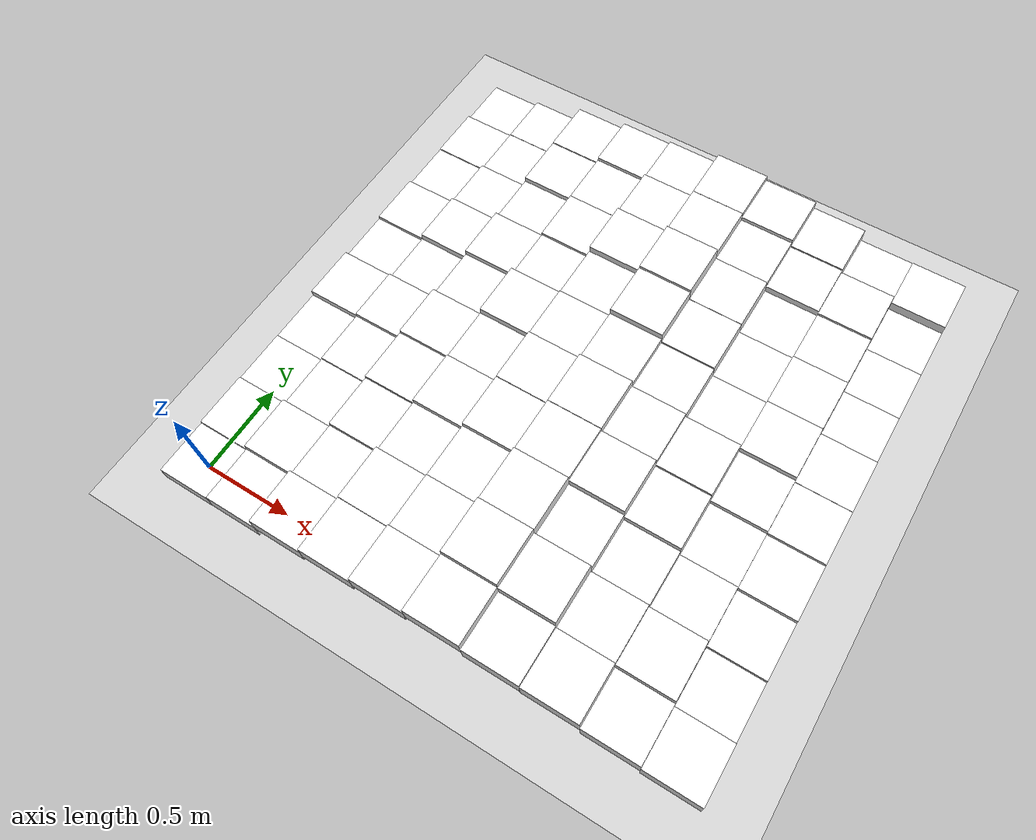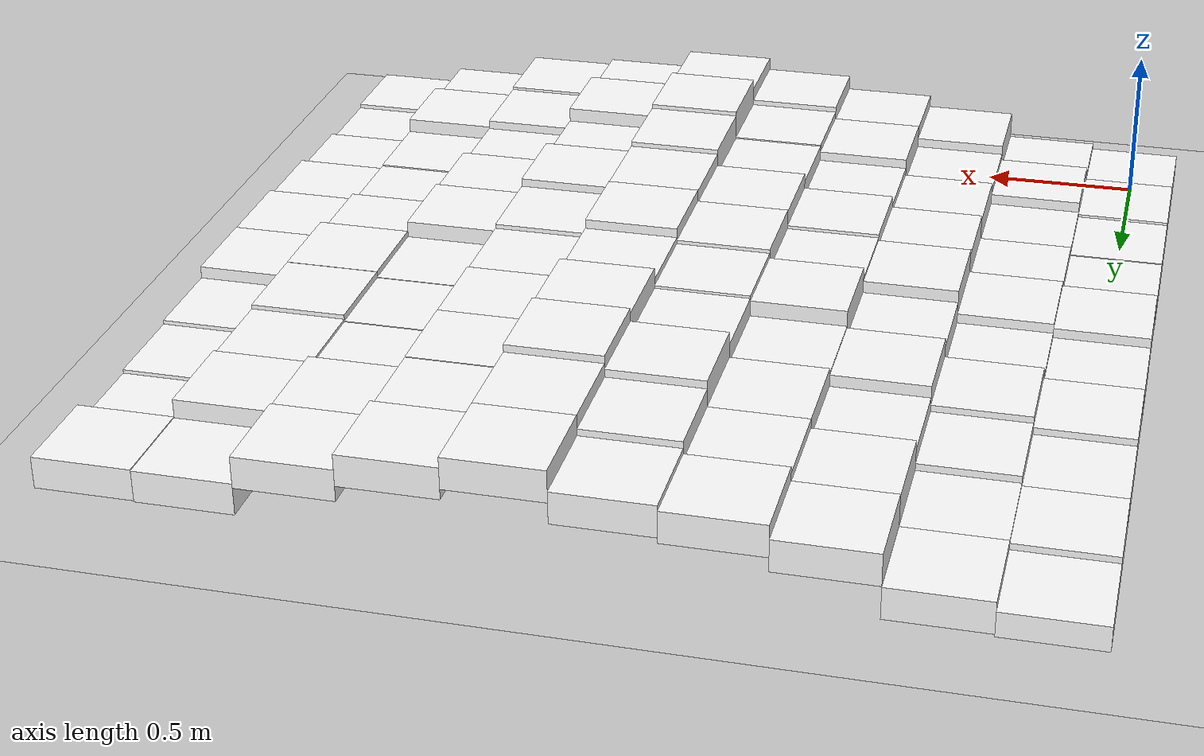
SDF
<sdf version="1.7">
 <world name="default">
  <include><uri>model://sun</uri></include>
  <include><uri>model://ground_plane</uri></include>
  <model name="static_environment">
   <static>true</static>
   <link name="region_0">
    <pose>0.0 0.0 0.03269961766065028 0.0 0.0 0.0</pose>
    <collision name="region_0_collision">
     <geometry><box><size>0.3 0.3 0.1</size></box></geometry>
     <surface><friction><ode><mu>1.0</mu><mu2>1.0</mu2></ode></friction></surface>
    </collision>
    <visual name="region_0_visual">
     <geometry><box><size>0.3 0.3 0.1</size></box></geometry>
     <material><ambient>1.0 1.0 1.0 1.0</ambient><diffuse>1.0 1.0 1.0 1.0</diffuse></material>
    </visual>
   </link>
   <link name="region_1">
    <pose>0.3 0.0 0.05194446738709185 0.0 0.0 0.0</pose>
    <collision name="region_1_collision">
     <geometry><box><size>0.3 0.3 0.1</size></box></geometry>
     <surface><friction><ode><mu>1.0</mu><mu2>1.0</mu2></ode></friction></surface>
    </collision>
    <visual name="region_1_visual">
     <geometry><box><size>0.3 0.3 0.1</size></box></geometry>
     <material><ambient>1.0 1.0 1.0 1.0</ambient><diffuse>1.0 1.0 1.0 1.0</diffuse></material>
    </visual>
   </link>
   <link name="region_2">
    <pose>0.6 0.0 0.1412246858409032 0.0 0.0 0.0</pose>
    <collision name="region_2_collision">
     <geometry><box><size>0.3 0.3 0.1</size></box></geometry>
     <surface><friction><ode><mu>1.0</mu><mu2>1.0</mu2></ode></friction></surface>
    </collision>
    <visual name="region_2_visual">
     <geometry><box><size>0.3 0.3 0.1</size></box></geometry>
     <material><ambient>1.0 1.0 1.0 1.0</ambient><diffuse>1.0 1.0 1.0 1.0</diffuse></material>
    </visual>
   </link>
   <link name="region_3">
    <pose>0.8999999999999999 0.0 0.1826491794463708 0.0 0.0 0.0</pose>
    <collision name="region_3_collision">
     <geometry><box><size>0.3 0.3 0.1</size></box></geometry>
     <surface><friction><ode><mu>1.0</mu><mu2>1.0</mu2></ode></friction></surface>
    </collision>
    <visual name="region_3_visual">
     <geometry><box><size>0.3 0.3 0.1</size></box></geometry>
     <material><ambient>1.0 1.0 1.0 1.0</ambient><diffuse>1.0 1.0 1.0 1.0</diffuse></material>
    </visual>
   </link>
   <link name="region_4">
    <pose>1.2 0.0 0.2315275851565617 0.0 0.0 0.0</pose>
    <collision name="region_4_collision">
     <geometry><box><size>0.3 0.3 0.1</size></box></geometry>
     <surface><friction><ode><mu>1.0</mu><mu2>1.0</mu2></ode></friction></surface>
    </collision>
    <visual name="region_4_visual">
     <geometry><box><size>0.3 0.3 0.1</size></box></geometry>
     <material><ambient>1.0 1.0 1.0 1.0</ambient><diffuse>1.0 1.0 1.0 1.0</diffuse></material>
    </visual>
   </link>
   <link name="region_5">
    <pose>1.5 0.0 0.27477511157529055 0.0 0.0 0.0</pose>
    <collision name="region_5_collision">
     <geometry><box><size>0.3 0.3 0.1</size></box></geometry>
     <surface><friction><ode><mu>1.0</mu><mu2>1.0</mu2></ode></friction></surface>
    </collision>
    <visual name="region_5_visual">
     <geometry><box><size>0.3 0.3 0.1</size></box></geometry>
     <material><ambient>1.0 1.0 1.0 1.0</ambient><diffuse>1.0 1.0 1.0 1.0</diffuse></material>
    </visual>
   </link>
   <link name="region_6">
    <pose>1.8 0.0 0.2153486475528382 0.0 0.0 0.0</pose>
    <collision name="region_6_collision">
     <geometry><box><size>0.3 0.3 0.1</size></box></geometry>
     <surface><friction><ode><mu>1.0</mu><mu2>1.0</mu2></ode></friction></surface>
    </collision>
    <visual name="region_6_visual">
     <geometry><box><size>0.3 0.3 0.1</size></box></geometry>
     <material><ambient>1.0 1.0 1.0 1.0</ambient><diffuse>1.0 1.0 1.0 1.0</diffuse></material>
    </visual>
   </link>
   <link name="region_7">
    <pose>2.1 0.0 0.1964453224762998 0.0 0.0 0.0</pose>
    <collision name="region_7_collision">
     <geometry><box><size>0.3 0.3 0.1</size></box></geometry>
     <surface><friction><ode><mu>1.0</mu><mu2>1.0</mu2></ode></friction></surface>
    </collision>
    <visual name="region_7_visual">
     <geometry><box><size>0.3 0.3 0.1</size></box></geometry>
     <material><ambient>1.0 1.0 1.0 1.0</ambient><diffuse>1.0 1.0 1.0 1.0</diffuse></material>
    </visual>
   </link>
   <link name="region_8">
    <pose>2.4 0.0 0.12247410052558926 0.0 0.0 0.0</pose>
    <collision name="region_8_collision">
     <geometry><box><size>0.3 0.3 0.1</size></box></geometry>
     <surface><friction><ode><mu>1.0</mu><mu2>1.0</mu2></ode></friction></surface>
    </collision>
    <visual name="region_8_visual">
     <geometry><box><size>0.3 0.3 0.1</size></box></geometry>
     <material><ambient>1.0 1.0 1.0 1.0</ambient><diffuse>1.0 1.0 1.0 1.0</diffuse></material>
    </visual>
   </link>
   <link name="region_9">
    <pose>2.6999999999999997 0.0 0.07001204563271501 0.0 0.0 0.0</pose>
    <collision name="region_9_collision">
     <geometry><box><size>0.3 0.3 0.1</size></box></geometry>
     <surface><friction><ode><mu>1.0</mu><mu2>1.0</mu2></ode></friction></surface>
    </collision>
    <visual name="region_9_visual">
     <geometry><box><size>0.3 0.3 0.1</size></box></geometry>
     <material><ambient>1.0 1.0 1.0 1.0</ambient><diffuse>1.0 1.0 1.0 1.0</diffuse></material>
    </visual>
   </link>
   <link name="region_10">
    <pose>0.0 0.3 0.04658503745769712 0.0 0.0 0.0</pose>
    <collision name="region_10_collision">
     <geometry><box><size>0.3 0.3 0.1</size></box></geometry>
     <surface><friction><ode><mu>1.0</mu><mu2>1.0</mu2></ode></friction></surface>
    </collision>
    <visual name="region_10_visual">
     <geometry><box><size>0.3 0.3 0.1</size></box></geometry>
     <material><ambient>1.0 1.0 1.0 1.0</ambient><diffuse>1.0 1.0 1.0 1.0</diffuse></material>
    </visual>
   </link>
   <link name="region_11">
    <pose>0.3 0.3 0.08968565707077794 0.0 0.0 0.0</pose>
    <collision name="region_11_collision">
     <geometry><box><size>0.3 0.3 0.1</size></box></geometry>
     <surface><friction><ode><mu>1.0</mu><mu2>1.0</mu2></ode></friction></surface>
    </collision>
    <visual name="region_11_visual">
     <geometry><box><size>0.3 0.3 0.1</size></box></geometry>
     <material><ambient>1.0 1.0 1.0 1.0</ambient><diffuse>1.0 1.0 1.0 1.0</diffuse></material>
    </visual>
   </link>
   <link name="region_12">
    <pose>0.6 0.3 0.11009349590087002 0.0 0.0 0.0</pose>
    <collision name="region_12_collision">
     <geometry><box><size>0.3 0.3 0.1</size></box></geometry>
     <surface><friction><ode><mu>1.0</mu><mu2>1.0</mu2></ode></friction></surface>
    </collision>
    <visual name="region_12_visual">
     <geometry><box><size>0.3 0.3 0.1</size></box></geometry>
     <material><ambient>1.0 1.0 1.0 1.0</ambient><diffuse>1.0 1.0 1.0 1.0</diffuse></material>
    </visual>
   </link>
   <link name="region_13">
    <pose>0.8999999999999999 0.3 0.188518359094931 0.0 0.0 0.0</pose>
    <collision name="region_13_collision">
     <geometry><box><size>0.3 0.3 0.1</size></box></geometry>
     <surface><friction><ode><mu>1.0</mu><mu2>1.0</mu2></ode></friction></surface>
    </collision>
    <visual name="region_13_visual">
     <geometry><box><size>0.3 0.3 0.1</size></box></geometry>
     <material><ambient>1.0 1.0 1.0 1.0</ambient><diffuse>1.0 1.0 1.0 1.0</diffuse></material>
    </visual>
   </link>
   <link name="region_14">
    <pose>1.2 0.3 0.21383298992351865 0.0 0.0 0.0</pose>
    <collision name="region_14_collision">
     <geometry><box><size>0.3 0.3 0.1</size></box></geometry>
     <surface><friction><ode><mu>1.0</mu><mu2>1.0</mu2></ode></friction></surface>
    </collision>
    <visual name="region_14_visual">
     <geometry><box><size>0.3 0.3 0.1</size></box></geometry>
     <material><ambient>1.0 1.0 1.0 1.0</ambient><diffuse>1.0 1.0 1.0 1.0</diffuse></material>
    </visual>
   </link>
   <link name="region_15">
    <pose>1.5 0.3 0.3089001360862505 0.0 0.0 0.0</pose>
    <collision name="region_15_collision">
     <geometry><box><size>0.3 0.3 0.1</size></box></geometry>
     <surface><friction><ode><mu>1.0</mu><mu2>1.0</mu2></ode></friction></surface>
    </collision>
    <visual name="region_15_visual">
     <geometry><box><size>0.3 0.3 0.1</size></box></geometry>
     <material><ambient>1.0 1.0 1.0 1.0</ambient><diffuse>1.0 1.0 1.0 1.0</diffuse></material>
    </visual>
   </link>
   <link name="region_16">
    <pose>1.8 0.3 0.26404814694796164 0.0 0.0 0.0</pose>
    <collision name="region_16_collision">
     <geometry><box><size>0.3 0.3 0.1</size></box></geometry>
     <surface><friction><ode><mu>1.0</mu><mu2>1.0</mu2></ode></friction></surface>
    </collision>
    <visual name="region_16_visual">
     <geometry><box><size>0.3 0.3 0.1</size></box></geometry>
     <material><ambient>1.0 1.0 1.0 1.0</ambient><diffuse>1.0 1.0 1.0 1.0</diffuse></material>
    </visual>
   </link>
   <link name="region_17">
    <pose>2.1 0.3 0.18706776280364462 0.0 0.0 0.0</pose>
    <collision name="region_17_collision">
     <geometry><box><size>0.3 0.3 0.1</size></box></geometry>
     <surface><friction><ode><mu>1.0</mu><mu2>1.0</mu2></ode></friction></surface>
    </collision>
    <visual name="region_17_visual">
     <geometry><box><size>0.3 0.3 0.1</size></box></geometry>
     <material><ambient>1.0 1.0 1.0 1.0</ambient><diffuse>1.0 1.0 1.0 1.0</diffuse></material>
    </visual>
   </link>
   <link name="region_18">
    <pose>2.4 0.3 0.16349211140181014 0.0 0.0 0.0</pose>
    <collision name="region_18_collision">
     <geometry><box><size>0.3 0.3 0.1</size></box></geometry>
     <surface><friction><ode><mu>1.0</mu><mu2>1.0</mu2></ode></friction></surface>
    </collision>
    <visual name="region_18_visual">
     <geometry><box><size>0.3 0.3 0.1</size></box></geometry>
     <material><ambient>1.0 1.0 1.0 1.0</ambient><diffuse>1.0 1.0 1.0 1.0</diffuse></material>
    </visual>
   </link>
   <link name="region_19">
    <pose>2.6999999999999997 0.3 0.05597341077567959 0.0 0.0 0.0</pose>
    <collision name="region_19_collision">
     <geometry><box><size>0.3 0.3 0.1</size></box></geometry>
     <surface><friction><ode><mu>1.0</mu><mu2>1.0</mu2></ode></friction></surface>
    </collision>
    <visual name="region_19_visual">
     <geometry><box><size>0.3 0.3 0.1</size></box></geometry>
     <material><ambient>1.0 1.0 1.0 1.0</ambient><diffuse>1.0 1.0 1.0 1.0</diffuse></material>
    </visual>
   </link>
   <link name="region_20">
    <pose>0.0 0.6 0.037893456759127794 0.0 0.0 0.0</pose>
    <collision name="region_20_collision">
     <geometry><box><size>0.3 0.3 0.1</size></box></geometry>
     <surface><friction><ode><mu>1.0</mu><mu2>1.0</mu2></ode></friction></surface>
    </collision>
    <visual name="region_20_visual">
     <geometry><box><size>0.3 0.3 0.1</size></box></geometry>
     <material><ambient>1.0 1.0 1.0 1.0</ambient><diffuse>1.0 1.0 1.0 1.0</diffuse></material>
    </visual>
   </link>
   <link name="region_21">
    <pose>0.3 0.6 0.054896487829015864 0.0 0.0 0.0</pose>
    <collision name="region_21_collision">
     <geometry><box><size>0.3 0.3 0.1</size></box></geometry>
     <surface><friction><ode><mu>1.0</mu><mu2>1.0</mu2></ode></friction></surface>
    </collision>
    <visual name="region_21_visual">
     <geometry><box><size>0.3 0.3 0.1</size></box></geometry>
     <material><ambient>1.0 1.0 1.0 1.0</ambient><diffuse>1.0 1.0 1.0 1.0</diffuse></material>
    </visual>
   </link>
   <link name="region_22">
    <pose>0.6 0.6 0.1321091745698042 0.0 0.0 0.0</pose>
    <collision name="region_22_collision">
     <geometry><box><size>0.3 0.3 0.1</size></box></geometry>
     <surface><friction><ode><mu>1.0</mu><mu2>1.0</mu2></ode></friction></surface>
    </collision>
    <visual name="region_22_visual">
     <geometry><box><size>0.3 0.3 0.1</size></box></geometry>
     <material><ambient>1.0 1.0 1.0 1.0</ambient><diffuse>1.0 1.0 1.0 1.0</diffuse></material>
    </visual>
   </link>
   <link name="region_23">
    <pose>0.8999999999999999 0.6 0.15723981867454595 0.0 0.0 0.0</pose>
    <collision name="region_23_collision">
     <geometry><box><size>0.3 0.3 0.1</size></box></geometry>
     <surface><friction><ode><mu>1.0</mu><mu2>1.0</mu2></ode></friction></surface>
    </collision>
    <visual name="region_23_visual">
     <geometry><box><size>0.3 0.3 0.1</size></box></geometry>
     <material><ambient>1.0 1.0 1.0 1.0</ambient><diffuse>1.0 1.0 1.0 1.0</diffuse></material>
    </visual>
   </link>
   <link name="region_24">
    <pose>1.2 0.6 0.20953699787759583 0.0 0.0 0.0</pose>
    <collision name="region_24_collision">
     <geometry><box><size>0.3 0.3 0.1</size></box></geometry>
     <surface><friction><ode><mu>1.0</mu><mu2>1.0</mu2></ode></friction></surface>
    </collision>
    <visual name="region_24_visual">
     <geometry><box><size>0.3 0.3 0.1</size></box></geometry>
     <material><ambient>1.0 1.0 1.0 1.0</ambient><diffuse>1.0 1.0 1.0 1.0</diffuse></material>
    </visual>
   </link>
   <link name="region_25">
    <pose>1.5 0.6 0.2947558981733947 0.0 0.0 0.0</pose>
    <collision name="region_25_collision">
     <geometry><box><size>0.3 0.3 0.1</size></box></geometry>
     <surface><friction><ode><mu>1.0</mu><mu2>1.0</mu2></ode></friction></surface>
    </collision>
    <visual name="region_25_visual">
     <geometry><box><size>0.3 0.3 0.1</size></box></geometry>
     <material><ambient>1.0 1.0 1.0 1.0</ambient><diffuse>1.0 1.0 1.0 1.0</diffuse></material>
    </visual>
   </link>
   <link name="region_26">
    <pose>1.8 0.6 0.2169509000453177 0.0 0.0 0.0</pose>
    <collision name="region_26_collision">
     <geometry><box><size>0.3 0.3 0.1</size></box></geometry>
     <surface><friction><ode><mu>1.0</mu><mu2>1.0</mu2></ode></friction></surface>
    </collision>
    <visual name="region_26_visual">
     <geometry><box><size>0.3 0.3 0.1</size></box></geometry>
     <material><ambient>1.0 1.0 1.0 1.0</ambient><diffuse>1.0 1.0 1.0 1.0</diffuse></material>
    </visual>
   </link>
   <link name="region_27">
    <pose>2.1 0.6 0.15802092632324874 0.0 0.0 0.0</pose>
    <collision name="region_27_collision">
     <geometry><box><size>0.3 0.3 0.1</size></box></geometry>
     <surface><friction><ode><mu>1.0</mu><mu2>1.0</mu2></ode></friction></surface>
    </collision>
    <visual name="region_27_visual">
     <geometry><box><size>0.3 0.3 0.1</size></box></geometry>
     <material><ambient>1.0 1.0 1.0 1.0</ambient><diffuse>1.0 1.0 1.0 1.0</diffuse></material>
    </visual>
   </link>
   <link name="region_28">
    <pose>2.4 0.6 0.116522965530292 0.0 0.0 0.0</pose>
    <collision name="region_28_collision">
     <geometry><box><size>0.3 0.3 0.1</size></box></geometry>
     <surface><friction><ode><mu>1.0</mu><mu2>1.0</mu2></ode></friction></surface>
    </collision>
    <visual name="region_28_visual">
     <geometry><box><size>0.3 0.3 0.1</size></box></geometry>
     <material><ambient>1.0 1.0 1.0 1.0</ambient><diffuse>1.0 1.0 1.0 1.0</diffuse></material>
    </visual>
   </link>
   <link name="region_29">
    <pose>2.6999999999999997 0.6 0.07623697137524746 0.0 0.0 0.0</pose>
    <collision name="region_29_collision">
     <geometry><box><size>0.3 0.3 0.1</size></box></geometry>
     <surface><friction><ode><mu>1.0</mu><mu2>1.0</mu2></ode></friction></surface>
    </collision>
    <visual name="region_29_visual">
     <geometry><box><size>0.3 0.3 0.1</size></box></geometry>
     <material><ambient>1.0 1.0 1.0 1.0</ambient><diffuse>1.0 1.0 1.0 1.0</diffuse></material>
    </visual>
   </link>
   <link name="region_30">
    <pose>0.0 0.8999999999999999 0.035084061343672514 0.0 0.0 0.0</pose>
    <collision name="region_30_collision">
     <geometry><box><size>0.3 0.3 0.1</size></box></geometry>
     <surface><friction><ode><mu>1.0</mu><mu2>1.0</mu2></ode></friction></surface>
    </collision>
    <visual name="region_30_visual">
     <geometry><box><size>0.3 0.3 0.1</size></box></geometry>
     <material><ambient>1.0 1.0 1.0 1.0</ambient><diffuse>1.0 1.0 1.0 1.0</diffuse></material>
    </visual>
   </link>
   <link name="region_31">
    <pose>0.3 0.8999999999999999 0.0651307419698724 0.0 0.0 0.0</pose>
    <collision name="region_31_collision">
     <geometry><box><size>0.3 0.3 0.1</size></box></geometry>
     <surface><friction><ode><mu>1.0</mu><mu2>1.0</mu2></ode></friction></surface>
    </collision>
    <visual name="region_31_visual">
     <geometry><box><size>0.3 0.3 0.1</size></box></geometry>
     <material><ambient>1.0 1.0 1.0 1.0</ambient><diffuse>1.0 1.0 1.0 1.0</diffuse></material>
    </visual>
   </link>
   <link name="region_32">
    <pose>0.6 0.8999999999999999 0.14803050439111862 0.0 0.0 0.0</pose>
    <collision name="region_32_collision">
     <geometry><box><size>0.3 0.3 0.1</size></box></geometry>
     <surface><friction><ode><mu>1.0</mu><mu2>1.0</mu2></ode></friction></surface>
    </collision>
    <visual name="region_32_visual">
     <geometry><box><size>0.3 0.3 0.1</size></box></geometry>
     <material><ambient>1.0 1.0 1.0 1.0</ambient><diffuse>1.0 1.0 1.0 1.0</diffuse></material>
    </visual>
   </link>
   <link name="region_33">
    <pose>0.8999999999999999 0.8999999999999999 0.1862302376663814 0.0 0.0 0.0</pose>
    <collision name="region_33_collision">
     <geometry><box><size>0.3 0.3 0.1</size></box></geometry>
     <surface><friction><ode><mu>1.0</mu><mu2>1.0</mu2></ode></friction></surface>
    </collision>
    <visual name="region_33_visual">
     <geometry><box><size>0.3 0.3 0.1</size></box></geometry>
     <material><ambient>1.0 1.0 1.0 1.0</ambient><diffuse>1.0 1.0 1.0 1.0</diffuse></material>
    </visual>
   </link>
   <link name="region_34">
    <pose>1.2 0.8999999999999999 0.2378927540013912 0.0 0.0 0.0</pose>
    <collision name="region_34_collision">
     <geometry><box><size>0.3 0.3 0.1</size></box></geometry>
     <surface><friction><ode><mu>1.0</mu><mu2>1.0</mu2></ode></friction></surface>
    </collision>
    <visual name="region_34_visual">
     <geometry><box><size>0.3 0.3 0.1</size></box></geometry>
     <material><ambient>1.0 1.0 1.0 1.0</ambient><diffuse>1.0 1.0 1.0 1.0</diffuse></material>
    </visual>
   </link>
   <link name="region_35">
    <pose>1.5 0.8999999999999999 0.27901694883389194 0.0 0.0 0.0</pose>
    <collision name="region_35_collision">
     <geometry><box><size>0.3 0.3 0.1</size></box></geometry>
     <surface><friction><ode><mu>1.0</mu><mu2>1.0</mu2></ode></friction></surface>
    </collision>
    <visual name="region_35_visual">
     <geometry><box><size>0.3 0.3 0.1</size></box></geometry>
     <material><ambient>1.0 1.0 1.0 1.0</ambient><diffuse>1.0 1.0 1.0 1.0</diffuse></material>
    </visual>
   </link>
   <link name="region_36">
    <pose>1.8 0.8999999999999999 0.2595228090831183 0.0 0.0 0.0</pose>
    <collision name="region_36_collision">
     <geometry><box><size>0.3 0.3 0.1</size></box></geometry>
     <surface><friction><ode><mu>1.0</mu><mu2>1.0</mu2></ode></friction></surface>
    </collision>
    <visual name="region_36_visual">
     <geometry><box><size>0.3 0.3 0.1</size></box></geometry>
     <material><ambient>1.0 1.0 1.0 1.0</ambient><diffuse>1.0 1.0 1.0 1.0</diffuse></material>
    </visual>
   </link>
   <link name="region_37">
    <pose>2.1 0.8999999999999999 0.1935003134158355 0.0 0.0 0.0</pose>
    <collision name="region_37_collision">
     <geometry><box><size>0.3 0.3 0.1</size></box></geometry>
     <surface><friction><ode><mu>1.0</mu><mu2>1.0</mu2></ode></friction></surface>
    </collision>
    <visual name="region_37_visual">
     <geometry><box><size>0.3 0.3 0.1</size></box></geometry>
     <material><ambient>1.0 1.0 1.0 1.0</ambient><diffuse>1.0 1.0 1.0 1.0</diffuse></material>
    </visual>
   </link>
   <link name="region_38">
    <pose>2.4 0.8999999999999999 0.11217239488767355 0.0 0.0 0.0</pose>
    <collision name="region_38_collision">
     <geometry><box><size>0.3 0.3 0.1</size></box></geometry>
     <surface><friction><ode><mu>1.0</mu><mu2>1.0</mu2></ode></friction></surface>
    </collision>
    <visual name="region_38_visual">
     <geometry><box><size>0.3 0.3 0.1</size></box></geometry>
     <material><ambient>1.0 1.0 1.0 1.0</ambient><diffuse>1.0 1.0 1.0 1.0</diffuse></material>
    </visual>
   </link>
   <link name="region_39">
    <pose>2.6999999999999997 0.8999999999999999 0.10255642599553674 0.0 0.0 0.0</pose>
    <collision name="region_39_collision">
     <geometry><box><size>0.3 0.3 0.1</size></box></geometry>
     <surface><friction><ode><mu>1.0</mu><mu2>1.0</mu2></ode></friction></surface>
    </collision>
    <visual name="region_39_visual">
     <geometry><box><size>0.3 0.3 0.1</size></box></geometry>
     <material><ambient>1.0 1.0 1.0 1.0</ambient><diffuse>1.0 1.0 1.0 1.0</diffuse></material>
    </visual>
   </link>
   <link name="region_40">
    <pose>0.0 1.2 0.07234133100669414 0.0 0.0 0.0</pose>
    <collision name="region_40_collision">
     <geometry><box><size>0.3 0.3 0.1</size></box></geometry>
     <surface><friction><ode><mu>1.0</mu><mu2>1.0</mu2></ode></friction></surface>
    </collision>
    <visual name="region_40_visual">
     <geometry><box><size>0.3 0.3 0.1</size></box></geometry>
     <material><ambient>1.0 1.0 1.0 1.0</ambient><diffuse>1.0 1.0 1.0 1.0</diffuse></material>
    </visual>
   </link>
   <link name="region_41">
    <pose>0.3 1.2 0.08750062708776626 0.0 0.0 0.0</pose>
    <collision name="region_41_collision">
     <geometry><box><size>0.3 0.3 0.1</size></box></geometry>
     <surface><friction><ode><mu>1.0</mu><mu2>1.0</mu2></ode></friction></surface>
    </collision>
    <visual name="region_41_visual">
     <geometry><box><size>0.3 0.3 0.1</size></box></geometry>
     <material><ambient>1.0 1.0 1.0 1.0</ambient><diffuse>1.0 1.0 1.0 1.0</diffuse></material>
    </visual>
   </link>
   <link name="region_42">
    <pose>0.6 1.2 0.16671400479596088 0.0 0.0 0.0</pose>
    <collision name="region_42_collision">
     <geometry><box><size>0.3 0.3 0.1</size></box></geometry>
     <surface><friction><ode><mu>1.0</mu><mu2>1.0</mu2></ode></friction></surface>
    </collision>
    <visual name="region_42_visual">
     <geometry><box><size>0.3 0.3 0.1</size></box></geometry>
     <material><ambient>1.0 1.0 1.0 1.0</ambient><diffuse>1.0 1.0 1.0 1.0</diffuse></material>
    </visual>
   </link>
   <link name="region_43">
    <pose>0.8999999999999999 1.2 0.17562102395033324 0.0 0.0 0.0</pose>
    <collision name="region_43_collision">
     <geometry><box><size>0.3 0.3 0.1</size></box></geometry>
     <surface><friction><ode><mu>1.0</mu><mu2>1.0</mu2></ode></friction></surface>
    </collision>
    <visual name="region_43_visual">
     <geometry><box><size>0.3 0.3 0.1</size></box></geometry>
     <material><ambient>1.0 1.0 1.0 1.0</ambient><diffuse>1.0 1.0 1.0 1.0</diffuse></material>
    </visual>
   </link>
   <link name="region_44">
    <pose>1.2 1.2 0.2425358095720782 0.0 0.0 0.0</pose>
    <collision name="region_44_collision">
     <geometry><box><size>0.3 0.3 0.1</size></box></geometry>
     <surface><friction><ode><mu>1.0</mu><mu2>1.0</mu2></ode></friction></surface>
    </collision>
    <visual name="region_44_visual">
     <geometry><box><size>0.3 0.3 0.1</size></box></geometry>
     <material><ambient>1.0 1.0 1.0 1.0</ambient><diffuse>1.0 1.0 1.0 1.0</diffuse></material>
    </visual>
   </link>
   <link name="region_45">
    <pose>1.5 1.2 0.28206594724720824 0.0 0.0 0.0</pose>
    <collision name="region_45_collision">
     <geometry><box><size>0.3 0.3 0.1</size></box></geometry>
     <surface><friction><ode><mu>1.0</mu><mu2>1.0</mu2></ode></friction></surface>
    </collision>
    <visual name="region_45_visual">
     <geometry><box><size>0.3 0.3 0.1</size></box></geometry>
     <material><ambient>1.0 1.0 1.0 1.0</ambient><diffuse>1.0 1.0 1.0 1.0</diffuse></material>
    </visual>
   </link>
   <link name="region_46">
    <pose>1.8 1.2 0.23275604472700995 0.0 0.0 0.0</pose>
    <collision name="region_46_collision">
     <geometry><box><size>0.3 0.3 0.1</size></box></geometry>
     <surface><friction><ode><mu>1.0</mu><mu2>1.0</mu2></ode></friction></surface>
    </collision>
    <visual name="region_46_visual">
     <geometry><box><size>0.3 0.3 0.1</size></box></geometry>
     <material><ambient>1.0 1.0 1.0 1.0</ambient><diffuse>1.0 1.0 1.0 1.0</diffuse></material>
    </visual>
   </link>
   <link name="region_47">
    <pose>2.1 1.2 0.20824193887478254 0.0 0.0 0.0</pose>
    <collision name="region_47_collision">
     <geometry><box><size>0.3 0.3 0.1</size></box></geometry>
     <surface><friction><ode><mu>1.0</mu><mu2>1.0</mu2></ode></friction></surface>
    </collision>
    <visual name="region_47_visual">
     <geometry><box><size>0.3 0.3 0.1</size></box></geometry>
     <material><ambient>1.0 1.0 1.0 1.0</ambient><diffuse>1.0 1.0 1.0 1.0</diffuse></material>
    </visual>
   </link>
   <link name="region_48">
    <pose>2.4 1.2 0.14017031301232424 0.0 0.0 0.0</pose>
    <collision name="region_48_collision">
     <geometry><box><size>0.3 0.3 0.1</size></box></geometry>
     <surface><friction><ode><mu>1.0</mu><mu2>1.0</mu2></ode></friction></surface>
    </collision>
    <visual name="region_48_visual">
     <geometry><box><size>0.3 0.3 0.1</size></box></geometry>
     <material><ambient>1.0 1.0 1.0 1.0</ambient><diffuse>1.0 1.0 1.0 1.0</diffuse></material>
    </visual>
   </link>
   <link name="region_49">
    <pose>2.6999999999999997 1.2 0.12153066702086501 0.0 0.0 0.0</pose>
    <collision name="region_49_collision">
     <geometry><box><size>0.3 0.3 0.1</size></box></geometry>
     <surface><friction><ode><mu>1.0</mu><mu2>1.0</mu2></ode></friction></surface>
    </collision>
    <visual name="region_49_visual">
     <geometry><box><size>0.3 0.3 0.1</size></box></geometry>
     <material><ambient>1.0 1.0 1.0 1.0</ambient><diffuse>1.0 1.0 1.0 1.0</diffuse></material>
    </visual>
   </link>
   <link name="region_50">
    <pose>0.0 1.5 0.04081561201110766 0.0 0.0 0.0</pose>
    <collision name="region_50_collision">
     <geometry><box><size>0.3 0.3 0.1</size></box></geometry>
     <surface><friction><ode><mu>1.0</mu><mu2>1.0</mu2></ode></friction></surface>
    </collision>
    <visual name="region_50_visual">
     <geometry><box><size>0.3 0.3 0.1</size></box></geometry>
     <material><ambient>1.0 1.0 1.0 1.0</ambient><diffuse>1.0 1.0 1.0 1.0</diffuse></material>
    </visual>
   </link>
   <link name="region_51">
    <pose>0.3 1.5 0.056157119170626865 0.0 0.0 0.0</pose>
    <collision name="region_51_collision">
     <geometry><box><size>0.3 0.3 0.1</size></box></geometry>
     <surface><friction><ode><mu>1.0</mu><mu2>1.0</mu2></ode></friction></surface>
    </collision>
    <visual name="region_51_visual">
     <geometry><box><size>0.3 0.3 0.1</size></box></geometry>
     <material><ambient>1.0 1.0 1.0 1.0</ambient><diffuse>1.0 1.0 1.0 1.0</diffuse></material>
    </visual>
   </link>
   <link name="region_52">
    <pose>0.6 1.5 0.12747568012562654 0.0 0.0 0.0</pose>
    <collision name="region_52_collision">
     <geometry><box><size>0.3 0.3 0.1</size></box></geometry>
     <surface><friction><ode><mu>1.0</mu><mu2>1.0</mu2></ode></friction></surface>
    </collision>
    <visual name="region_52_visual">
     <geometry><box><size>0.3 0.3 0.1</size></box></geometry>
     <material><ambient>1.0 1.0 1.0 1.0</ambient><diffuse>1.0 1.0 1.0 1.0</diffuse></material>
    </visual>
   </link>
   <link name="region_53">
    <pose>0.8999999999999999 1.5 0.21381378780033766 0.0 0.0 0.0</pose>
    <collision name="region_53_collision">
     <geometry><box><size>0.3 0.3 0.1</size></box></geometry>
     <surface><friction><ode><mu>1.0</mu><mu2>1.0</mu2></ode></friction></surface>
    </collision>
    <visual name="region_53_visual">
     <geometry><box><size>0.3 0.3 0.1</size></box></geometry>
     <material><ambient>1.0 1.0 1.0 1.0</ambient><diffuse>1.0 1.0 1.0 1.0</diffuse></material>
    </visual>
   </link>
   <link name="region_54">
    <pose>1.2 1.5 0.23047062822859632 0.0 0.0 0.0</pose>
    <collision name="region_54_collision">
     <geometry><box><size>0.3 0.3 0.1</size></box></geometry>
     <surface><friction><ode><mu>1.0</mu><mu2>1.0</mu2></ode></friction></surface>
    </collision>
    <visual name="region_54_visual">
     <geometry><box><size>0.3 0.3 0.1</size></box></geometry>
     <material><ambient>1.0 1.0 1.0 1.0</ambient><diffuse>1.0 1.0 1.0 1.0</diffuse></material>
    </visual>
   </link>
   <link name="region_55">
    <pose>1.5 1.5 0.2520401774421137 0.0 0.0 0.0</pose>
    <collision name="region_55_collision">
     <geometry><box><size>0.3 0.3 0.1</size></box></geometry>
     <surface><friction><ode><mu>1.0</mu><mu2>1.0</mu2></ode></friction></surface>
    </collision>
    <visual name="region_55_visual">
     <geometry><box><size>0.3 0.3 0.1</size></box></geometry>
     <material><ambient>1.0 1.0 1.0 1.0</ambient><diffuse>1.0 1.0 1.0 1.0</diffuse></material>
    </visual>
   </link>
   <link name="region_56">
    <pose>1.8 1.5 0.2185382929248015 0.0 0.0 0.0</pose>
    <collision name="region_56_collision">
     <geometry><box><size>0.3 0.3 0.1</size></box></geometry>
     <surface><friction><ode><mu>1.0</mu><mu2>1.0</mu2></ode></friction></surface>
    </collision>
    <visual name="region_56_visual">
     <geometry><box><size>0.3 0.3 0.1</size></box></geometry>
     <material><ambient>1.0 1.0 1.0 1.0</ambient><diffuse>1.0 1.0 1.0 1.0</diffuse></material>
    </visual>
   </link>
   <link name="region_57">
    <pose>2.1 1.5 0.15503582780527161 0.0 0.0 0.0</pose>
    <collision name="region_57_collision">
     <geometry><box><size>0.3 0.3 0.1</size></box></geometry>
     <surface><friction><ode><mu>1.0</mu><mu2>1.0</mu2></ode></friction></surface>
    </collision>
    <visual name="region_57_visual">
     <geometry><box><size>0.3 0.3 0.1</size></box></geometry>
     <material><ambient>1.0 1.0 1.0 1.0</ambient><diffuse>1.0 1.0 1.0 1.0</diffuse></material>
    </visual>
   </link>
   <link name="region_58">
    <pose>2.4 1.5 0.17453890085659549 0.0 0.0 0.0</pose>
    <collision name="region_58_collision">
     <geometry><box><size>0.3 0.3 0.1</size></box></geometry>
     <surface><friction><ode><mu>1.0</mu><mu2>1.0</mu2></ode></friction></surface>
    </collision>
    <visual name="region_58_visual">
     <geometry><box><size>0.3 0.3 0.1</size></box></geometry>
     <material><ambient>1.0 1.0 1.0 1.0</ambient><diffuse>1.0 1.0 1.0 1.0</diffuse></material>
    </visual>
   </link>
   <link name="region_59">
    <pose>2.6999999999999997 1.5 0.12279352350328802 0.0 0.0 0.0</pose>
    <collision name="region_59_collision">
     <geometry><box><size>0.3 0.3 0.1</size></box></geometry>
     <surface><friction><ode><mu>1.0</mu><mu2>1.0</mu2></ode></friction></surface>
    </collision>
    <visual name="region_59_visual">
     <geometry><box><size>0.3 0.3 0.1</size></box></geometry>
     <material><ambient>1.0 1.0 1.0 1.0</ambient><diffuse>1.0 1.0 1.0 1.0</diffuse></material>
    </visual>
   </link>
   <link name="region_60">
    <pose>0.0 1.8 0.06001937633494401 0.0 0.0 0.0</pose>
    <collision name="region_60_collision">
     <geometry><box><size>0.3 0.3 0.1</size></box></geometry>
     <surface><friction><ode><mu>1.0</mu><mu2>1.0</mu2></ode></friction></surface>
    </collision>
    <visual name="region_60_visual">
     <geometry><box><size>0.3 0.3 0.1</size></box></geometry>
     <material><ambient>1.0 1.0 1.0 1.0</ambient><diffuse>1.0 1.0 1.0 1.0</diffuse></material>
    </visual>
   </link>
   <link name="region_61">
    <pose>0.3 1.8 0.09513628410541006 0.0 0.0 0.0</pose>
    <collision name="region_61_collision">
     <geometry><box><size>0.3 0.3 0.1</size></box></geometry>
     <surface><friction><ode><mu>1.0</mu><mu2>1.0</mu2></ode></friction></surface>
    </collision>
    <visual name="region_61_visual">
     <geometry><box><size>0.3 0.3 0.1</size></box></geometry>
     <material><ambient>1.0 1.0 1.0 1.0</ambient><diffuse>1.0 1.0 1.0 1.0</diffuse></material>
    </visual>
   </link>
   <link name="region_62">
    <pose>0.6 1.8 0.1573719895338761 0.0 0.0 0.0</pose>
    <collision name="region_62_collision">
     <geometry><box><size>0.3 0.3 0.1</size></box></geometry>
     <surface><friction><ode><mu>1.0</mu><mu2>1.0</mu2></ode></friction></surface>
    </collision>
    <visual name="region_62_visual">
     <geometry><box><size>0.3 0.3 0.1</size></box></geometry>
     <material><ambient>1.0 1.0 1.0 1.0</ambient><diffuse>1.0 1.0 1.0 1.0</diffuse></material>
    </visual>
   </link>
   <link name="region_63">
    <pose>0.8999999999999999 1.8 0.16269190849381338 0.0 0.0 0.0</pose>
    <collision name="region_63_collision">
     <geometry><box><size>0.3 0.3 0.1</size></box></geometry>
     <surface><friction><ode><mu>1.0</mu><mu2>1.0</mu2></ode></friction></surface>
    </collision>
    <visual name="region_63_visual">
     <geometry><box><size>0.3 0.3 0.1</size></box></geometry>
     <material><ambient>1.0 1.0 1.0 1.0</ambient><diffuse>1.0 1.0 1.0 1.0</diffuse></material>
    </visual>
   </link>
   <link name="region_64">
    <pose>1.2 1.8 0.22197674238645798 0.0 0.0 0.0</pose>
    <collision name="region_64_collision">
     <geometry><box><size>0.3 0.3 0.1</size></box></geometry>
     <surface><friction><ode><mu>1.0</mu><mu2>1.0</mu2></ode></friction></surface>
    </collision>
    <visual name="region_64_visual">
     <geometry><box><size>0.3 0.3 0.1</size></box></geometry>
     <material><ambient>1.0 1.0 1.0 1.0</ambient><diffuse>1.0 1.0 1.0 1.0</diffuse></material>
    </visual>
   </link>
   <link name="region_65">
    <pose>1.5 1.8 0.2893050156475273 0.0 0.0 0.0</pose>
    <collision name="region_65_collision">
     <geometry><box><size>0.3 0.3 0.1</size></box></geometry>
     <surface><friction><ode><mu>1.0</mu><mu2>1.0</mu2></ode></friction></surface>
    </collision>
    <visual name="region_65_visual">
     <geometry><box><size>0.3 0.3 0.1</size></box></geometry>
     <material><ambient>1.0 1.0 1.0 1.0</ambient><diffuse>1.0 1.0 1.0 1.0</diffuse></material>
    </visual>
   </link>
   <link name="region_66">
    <pose>1.8 1.8 0.22674682108420693 0.0 0.0 0.0</pose>
    <collision name="region_66_collision">
     <geometry><box><size>0.3 0.3 0.1</size></box></geometry>
     <surface><friction><ode><mu>1.0</mu><mu2>1.0</mu2></ode></friction></surface>
    </collision>
    <visual name="region_66_visual">
     <geometry><box><size>0.3 0.3 0.1</size></box></geometry>
     <material><ambient>1.0 1.0 1.0 1.0</ambient><diffuse>1.0 1.0 1.0 1.0</diffuse></material>
    </visual>
   </link>
   <link name="region_67">
    <pose>2.1 1.8 0.15342592239340502 0.0 0.0 0.0</pose>
    <collision name="region_67_collision">
     <geometry><box><size>0.3 0.3 0.1</size></box></geometry>
     <surface><friction><ode><mu>1.0</mu><mu2>1.0</mu2></ode></friction></surface>
    </collision>
    <visual name="region_67_visual">
     <geometry><box><size>0.3 0.3 0.1</size></box></geometry>
     <material><ambient>1.0 1.0 1.0 1.0</ambient><diffuse>1.0 1.0 1.0 1.0</diffuse></material>
    </visual>
   </link>
   <link name="region_68">
    <pose>2.4 1.8 0.17373650840179097 0.0 0.0 0.0</pose>
    <collision name="region_68_collision">
     <geometry><box><size>0.3 0.3 0.1</size></box></geometry>
     <surface><friction><ode><mu>1.0</mu><mu2>1.0</mu2></ode></friction></surface>
    </collision>
    <visual name="region_68_visual">
     <geometry><box><size>0.3 0.3 0.1</size></box></geometry>
     <material><ambient>1.0 1.0 1.0 1.0</ambient><diffuse>1.0 1.0 1.0 1.0</diffuse></material>
    </visual>
   </link>
   <link name="region_69">
    <pose>2.6999999999999997 1.8 0.08310161895161353 0.0 0.0 0.0</pose>
    <collision name="region_69_collision">
     <geometry><box><size>0.3 0.3 0.1</size></box></geometry>
     <surface><friction><ode><mu>1.0</mu><mu2>1.0</mu2></ode></friction></surface>
    </collision>
    <visual name="region_69_visual">
     <geometry><box><size>0.3 0.3 0.1</size></box></geometry>
     <material><ambient>1.0 1.0 1.0 1.0</ambient><diffuse>1.0 1.0 1.0 1.0</diffuse></material>
    </visual>
   </link>
   <link name="region_70">
    <pose>0.0 2.1 0.037800032953436445 0.0 0.0 0.0</pose>
    <collision name="region_70_collision">
     <geometry><box><size>0.3 0.3 0.1</size></box></geometry>
     <surface><friction><ode><mu>1.0</mu><mu2>1.0</mu2></ode></friction></surface>
    </collision>
    <visual name="region_70_visual">
     <geometry><box><size>0.3 0.3 0.1</size></box></geometry>
     <material><ambient>1.0 1.0 1.0 1.0</ambient><diffuse>1.0 1.0 1.0 1.0</diffuse></material>
    </visual>
   </link>
   <link name="region_71">
    <pose>0.3 2.1 0.07426559881510242 0.0 0.0 0.0</pose>
    <collision name="region_71_collision">
     <geometry><box><size>0.3 0.3 0.1</size></box></geometry>
     <surface><friction><ode><mu>1.0</mu><mu2>1.0</mu2></ode></friction></surface>
    </collision>
    <visual name="region_71_visual">
     <geometry><box><size>0.3 0.3 0.1</size></box></geometry>
     <material><ambient>1.0 1.0 1.0 1.0</ambient><diffuse>1.0 1.0 1.0 1.0</diffuse></material>
    </visual>
   </link>
   <link name="region_72">
    <pose>0.6 2.1 0.11948085645603529 0.0 0.0 0.0</pose>
    <collision name="region_72_collision">
     <geometry><box><size>0.3 0.3 0.1</size></box></geometry>
     <surface><friction><ode><mu>1.0</mu><mu2>1.0</mu2></ode></friction></surface>
    </collision>
    <visual name="region_72_visual">
     <geometry><box><size>0.3 0.3 0.1</size></box></geometry>
     <material><ambient>1.0 1.0 1.0 1.0</ambient><diffuse>1.0 1.0 1.0 1.0</diffuse></material>
    </visual>
   </link>
   <link name="region_73">
    <pose>0.8999999999999999 2.1 0.1790167413990572 0.0 0.0 0.0</pose>
    <collision name="region_73_collision">
     <geometry><box><size>0.3 0.3 0.1</size></box></geometry>
     <surface><friction><ode><mu>1.0</mu><mu2>1.0</mu2></ode></friction></surface>
    </collision>
    <visual name="region_73_visual">
     <geometry><box><size>0.3 0.3 0.1</size></box></geometry>
     <material><ambient>1.0 1.0 1.0 1.0</ambient><diffuse>1.0 1.0 1.0 1.0</diffuse></material>
    </visual>
   </link>
   <link name="region_74">
    <pose>1.2 2.1 0.2624012674725876 0.0 0.0 0.0</pose>
    <collision name="region_74_collision">
     <geometry><box><size>0.3 0.3 0.1</size></box></geometry>
     <surface><friction><ode><mu>1.0</mu><mu2>1.0</mu2></ode></friction></surface>
    </collision>
    <visual name="region_74_visual">
     <geometry><box><size>0.3 0.3 0.1</size></box></geometry>
     <material><ambient>1.0 1.0 1.0 1.0</ambient><diffuse>1.0 1.0 1.0 1.0</diffuse></material>
    </visual>
   </link>
   <link name="region_75">
    <pose>1.5 2.1 0.30525602922153344 0.0 0.0 0.0</pose>
    <collision name="region_75_collision">
     <geometry><box><size>0.3 0.3 0.1</size></box></geometry>
     <surface><friction><ode><mu>1.0</mu><mu2>1.0</mu2></ode></friction></surface>
    </collision>
    <visual name="region_75_visual">
     <geometry><box><size>0.3 0.3 0.1</size></box></geometry>
     <material><ambient>1.0 1.0 1.0 1.0</ambient><diffuse>1.0 1.0 1.0 1.0</diffuse></material>
    </visual>
   </link>
   <link name="region_76">
    <pose>1.8 2.1 0.22844079252062283 0.0 0.0 0.0</pose>
    <collision name="region_76_collision">
     <geometry><box><size>0.3 0.3 0.1</size></box></geometry>
     <surface><friction><ode><mu>1.0</mu><mu2>1.0</mu2></ode></friction></surface>
    </collision>
    <visual name="region_76_visual">
     <geometry><box><size>0.3 0.3 0.1</size></box></geometry>
     <material><ambient>1.0 1.0 1.0 1.0</ambient><diffuse>1.0 1.0 1.0 1.0</diffuse></material>
    </visual>
   </link>
   <link name="region_77">
    <pose>2.1 2.1 0.15097630025209133 0.0 0.0 0.0</pose>
    <collision name="region_77_collision">
     <geometry><box><size>0.3 0.3 0.1</size></box></geometry>
     <surface><friction><ode><mu>1.0</mu><mu2>1.0</mu2></ode></friction></surface>
    </collision>
    <visual name="region_77_visual">
     <geometry><box><size>0.3 0.3 0.1</size></box></geometry>
     <material><ambient>1.0 1.0 1.0 1.0</ambient><diffuse>1.0 1.0 1.0 1.0</diffuse></material>
    </visual>
   </link>
   <link name="region_78">
    <pose>2.4 2.1 0.15980537042744453 0.0 0.0 0.0</pose>
    <collision name="region_78_collision">
     <geometry><box><size>0.3 0.3 0.1</size></box></geometry>
     <surface><friction><ode><mu>1.0</mu><mu2>1.0</mu2></ode></friction></surface>
    </collision>
    <visual name="region_78_visual">
     <geometry><box><size>0.3 0.3 0.1</size></box></geometry>
     <material><ambient>1.0 1.0 1.0 1.0</ambient><diffuse>1.0 1.0 1.0 1.0</diffuse></material>
    </visual>
   </link>
   <link name="region_79">
    <pose>2.6999999999999997 2.1 0.07020415981972261 0.0 0.0 0.0</pose>
    <collision name="region_79_collision">
     <geometry><box><size>0.3 0.3 0.1</size></box></geometry>
     <surface><friction><ode><mu>1.0</mu><mu2>1.0</mu2></ode></friction></surface>
    </collision>
    <visual name="region_79_visual">
     <geometry><box><size>0.3 0.3 0.1</size></box></geometry>
     <material><ambient>1.0 1.0 1.0 1.0</ambient><diffuse>1.0 1.0 1.0 1.0</diffuse></material>
    </visual>
   </link>
   <link name="region_80">
    <pose>0.0 2.4 0.04370136663967759 0.0 0.0 0.0</pose>
    <collision name="region_80_collision">
     <geometry><box><size>0.3 0.3 0.1</size></box></geometry>
     <surface><friction><ode><mu>1.0</mu><mu2>1.0</mu2></ode></friction></surface>
    </collision>
    <visual name="region_80_visual">
     <geometry><box><size>0.3 0.3 0.1</size></box></geometry>
     <material><ambient>1.0 1.0 1.0 1.0</ambient><diffuse>1.0 1.0 1.0 1.0</diffuse></material>
    </visual>
   </link>
   <link name="region_81">
    <pose>0.3 2.4 0.05191632063872696 0.0 0.0 0.0</pose>
    <collision name="region_81_collision">
     <geometry><box><size>0.3 0.3 0.1</size></box></geometry>
     <surface><friction><ode><mu>1.0</mu><mu2>1.0</mu2></ode></friction></surface>
    </collision>
    <visual name="region_81_visual">
     <geometry><box><size>0.3 0.3 0.1</size></box></geometry>
     <material><ambient>1.0 1.0 1.0 1.0</ambient><diffuse>1.0 1.0 1.0 1.0</diffuse></material>
    </visual>
   </link>
   <link name="region_82">
    <pose>0.6 2.4 0.14966515144512443 0.0 0.0 0.0</pose>
    <collision name="region_82_collision">
     <geometry><box><size>0.3 0.3 0.1</size></box></geometry>
     <surface><friction><ode><mu>1.0</mu><mu2>1.0</mu2></ode></friction></surface>
    </collision>
    <visual name="region_82_visual">
     <geometry><box><size>0.3 0.3 0.1</size></box></geometry>
     <material><ambient>1.0 1.0 1.0 1.0</ambient><diffuse>1.0 1.0 1.0 1.0</diffuse></material>
    </visual>
   </link>
   <link name="region_83">
    <pose>0.8999999999999999 2.4 0.17906425694049613 0.0 0.0 0.0</pose>
    <collision name="region_83_collision">
     <geometry><box><size>0.3 0.3 0.1</size></box></geometry>
     <surface><friction><ode><mu>1.0</mu><mu2>1.0</mu2></ode></friction></surface>
    </collision>
    <visual name="region_83_visual">
     <geometry><box><size>0.3 0.3 0.1</size></box></geometry>
     <material><ambient>1.0 1.0 1.0 1.0</ambient><diffuse>1.0 1.0 1.0 1.0</diffuse></material>
    </visual>
   </link>
   <link name="region_84">
    <pose>1.2 2.4 0.23728053490508846 0.0 0.0 0.0</pose>
    <collision name="region_84_collision">
     <geometry><box><size>0.3 0.3 0.1</size></box></geometry>
     <surface><friction><ode><mu>1.0</mu><mu2>1.0</mu2></ode></friction></surface>
    </collision>
    <visual name="region_84_visual">
     <geometry><box><size>0.3 0.3 0.1</size></box></geometry>
     <material><ambient>1.0 1.0 1.0 1.0</ambient><diffuse>1.0 1.0 1.0 1.0</diffuse></material>
    </visual>
   </link>
   <link name="region_85">
    <pose>1.5 2.4 0.28111793780310157 0.0 0.0 0.0</pose>
    <collision name="region_85_collision">
     <geometry><box><size>0.3 0.3 0.1</size></box></geometry>
     <surface><friction><ode><mu>1.0</mu><mu2>1.0</mu2></ode></friction></surface>
    </collision>
    <visual name="region_85_visual">
     <geometry><box><size>0.3 0.3 0.1</size></box></geometry>
     <material><ambient>1.0 1.0 1.0 1.0</ambient><diffuse>1.0 1.0 1.0 1.0</diffuse></material>
    </visual>
   </link>
   <link name="region_86">
    <pose>1.8 2.4 0.22631539259762304 0.0 0.0 0.0</pose>
    <collision name="region_86_collision">
     <geometry><box><size>0.3 0.3 0.1</size></box></geometry>
     <surface><friction><ode><mu>1.0</mu><mu2>1.0</mu2></ode></friction></surface>
    </collision>
    <visual name="region_86_visual">
     <geometry><box><size>0.3 0.3 0.1</size></box></geometry>
     <material><ambient>1.0 1.0 1.0 1.0</ambient><diffuse>1.0 1.0 1.0 1.0</diffuse></material>
    </visual>
   </link>
   <link name="region_87">
    <pose>2.1 2.4 0.19132334289933145 0.0 0.0 0.0</pose>
    <collision name="region_87_collision">
     <geometry><box><size>0.3 0.3 0.1</size></box></geometry>
     <surface><friction><ode><mu>1.0</mu><mu2>1.0</mu2></ode></friction></surface>
    </collision>
    <visual name="region_87_visual">
     <geometry><box><size>0.3 0.3 0.1</size></box></geometry>
     <material><ambient>1.0 1.0 1.0 1.0</ambient><diffuse>1.0 1.0 1.0 1.0</diffuse></material>
    </visual>
   </link>
   <link name="region_88">
    <pose>2.4 2.4 0.1729683017406119 0.0 0.0 0.0</pose>
    <collision name="region_88_collision">
     <geometry><box><size>0.3 0.3 0.1</size></box></geometry>
     <surface><friction><ode><mu>1.0</mu><mu2>1.0</mu2></ode></friction></surface>
    </collision>
    <visual name="region_88_visual">
     <geometry><box><size>0.3 0.3 0.1</size></box></geometry>
     <material><ambient>1.0 1.0 1.0 1.0</ambient><diffuse>1.0 1.0 1.0 1.0</diffuse></material>
    </visual>
   </link>
   <link name="region_89">
    <pose>2.6999999999999997 2.4 0.058458216142855374 0.0 0.0 0.0</pose>
    <collision name="region_89_collision">
     <geometry><box><size>0.3 0.3 0.1</size></box></geometry>
     <surface><friction><ode><mu>1.0</mu><mu2>1.0</mu2></ode></friction></surface>
    </collision>
    <visual name="region_89_visual">
     <geometry><box><size>0.3 0.3 0.1</size></box></geometry>
     <material><ambient>1.0 1.0 1.0 1.0</ambient><diffuse>1.0 1.0 1.0 1.0</diffuse></material>
    </visual>
   </link>
   <link name="region_90">
    <pose>0.0 2.6999999999999997 0.023494389632228517 0.0 0.0 0.0</pose>
    <collision name="region_90_collision">
     <geometry><box><size>0.3 0.3 0.1</size></box></geometry>
     <surface><friction><ode><mu>1.0</mu><mu2>1.0</mu2></ode></friction></surface>
    </collision>
    <visual name="region_90_visual">
     <geometry><box><size>0.3 0.3 0.1</size></box></geometry>
     <material><ambient>1.0 1.0 1.0 1.0</ambient><diffuse>1.0 1.0 1.0 1.0</diffuse></material>
    </visual>
   </link>
   <link name="region_91">
    <pose>0.3 2.6999999999999997 0.053134828236148256 0.0 0.0 0.0</pose>
    <collision name="region_91_collision">
     <geometry><box><size>0.3 0.3 0.1</size></box></geometry>
     <surface><friction><ode><mu>1.0</mu><mu2>1.0</mu2></ode></friction></surface>
    </collision>
    <visual name="region_91_visual">
     <geometry><box><size>0.3 0.3 0.1</size></box></geometry>
     <material><ambient>1.0 1.0 1.0 1.0</ambient><diffuse>1.0 1.0 1.0 1.0</diffuse></material>
    </visual>
   </link>
   <link name="region_92">
    <pose>0.6 2.6999999999999997 0.15537998189656754 0.0 0.0 0.0</pose>
    <collision name="region_92_collision">
     <geometry><box><size>0.3 0.3 0.1</size></box></geometry>
     <surface><friction><ode><mu>1.0</mu><mu2>1.0</mu2></ode></friction></surface>
    </collision>
    <visual name="region_92_visual">
     <geometry><box><size>0.3 0.3 0.1</size></box></geometry>
     <material><ambient>1.0 1.0 1.0 1.0</ambient><diffuse>1.0 1.0 1.0 1.0</diffuse></material>
    </visual>
   </link>
   <link name="region_93">
    <pose>0.8999999999999999 2.6999999999999997 0.1993134290744283 0.0 0.0 0.0</pose>
    <collision name="region_93_collision">
     <geometry><box><size>0.3 0.3 0.1</size></box></geometry>
     <surface><friction><ode><mu>1.0</mu><mu2>1.0</mu2></ode></friction></surface>
    </collision>
    <visual name="region_93_visual">
     <geometry><box><size>0.3 0.3 0.1</size></box></geometry>
     <material><ambient>1.0 1.0 1.0 1.0</ambient><diffuse>1.0 1.0 1.0 1.0</diffuse></material>
    </visual>
   </link>
   <link name="region_94">
    <pose>1.2 2.6999999999999997 0.21609768097999654 0.0 0.0 0.0</pose>
    <collision name="region_94_collision">
     <geometry><box><size>0.3 0.3 0.1</size></box></geometry>
     <surface><friction><ode><mu>1.0</mu><mu2>1.0</mu2></ode></friction></surface>
    </collision>
    <visual name="region_94_visual">
     <geometry><box><size>0.3 0.3 0.1</size></box></geometry>
     <material><ambient>1.0 1.0 1.0 1.0</ambient><diffuse>1.0 1.0 1.0 1.0</diffuse></material>
    </visual>
   </link>
   <link name="region_95">
    <pose>1.5 2.6999999999999997 0.2812565080146503 0.0 0.0 0.0</pose>
    <collision name="region_95_collision">
     <geometry><box><size>0.3 0.3 0.1</size></box></geometry>
     <surface><friction><ode><mu>1.0</mu><mu2>1.0</mu2></ode></friction></surface>
    </collision>
    <visual name="region_95_visual">
     <geometry><box><size>0.3 0.3 0.1</size></box></geometry>
     <material><ambient>1.0 1.0 1.0 1.0</ambient><diffuse>1.0 1.0 1.0 1.0</diffuse></material>
    </visual>
   </link>
   <link name="region_96">
    <pose>1.8 2.6999999999999997 0.24828814506111463 0.0 0.0 0.0</pose>
    <collision name="region_96_collision">
     <geometry><box><size>0.3 0.3 0.1</size></box></geometry>
     <surface><friction><ode><mu>1.0</mu><mu2>1.0</mu2></ode></friction></surface>
    </collision>
    <visual name="region_96_visual">
     <geometry><box><size>0.3 0.3 0.1</size></box></geometry>
     <material><ambient>1.0 1.0 1.0 1.0</ambient><diffuse>1.0 1.0 1.0 1.0</diffuse></material>
    </visual>
   </link>
   <link name="region_97">
    <pose>2.1 2.6999999999999997 0.19961109950365813 0.0 0.0 0.0</pose>
    <collision name="region_97_collision">
     <geometry><box><size>0.3 0.3 0.1</size></box></geometry>
     <surface><friction><ode><mu>1.0</mu><mu2>1.0</mu2></ode></friction></surface>
    </collision>
    <visual name="region_97_visual">
     <geometry><box><size>0.3 0.3 0.1</size></box></geometry>
     <material><ambient>1.0 1.0 1.0 1.0</ambient><diffuse>1.0 1.0 1.0 1.0</diffuse></material>
    </visual>
   </link>
   <link name="region_98">
    <pose>2.4 2.6999999999999997 0.11278578501128282 0.0 0.0 0.0</pose>
    <collision name="region_98_collision">
     <geometry><box><size>0.3 0.3 0.1</size></box></geometry>
     <surface><friction><ode><mu>1.0</mu><mu2>1.0</mu2></ode></friction></surface>
    </collision>
    <visual name="region_98_visual">
     <geometry><box><size>0.3 0.3 0.1</size></box></geometry>
     <material><ambient>1.0 1.0 1.0 1.0</ambient><diffuse>1.0 1.0 1.0 1.0</diffuse></material>
    </visual>
   </link>
   <link name="region_99">
    <pose>2.6999999999999997 2.6999999999999997 0.11612391768114115 0.0 0.0 0.0</pose>
    <collision name="region_99_collision">
     <geometry><box><size>0.3 0.3 0.1</size></box></geometry>
     <surface><friction><ode><mu>1.0</mu><mu2>1.0</mu2></ode></friction></surface>
    </collision>
    <visual name="region_99_visual">
     <geometry><box><size>0.3 0.3 0.1</size></box></geometry>
     <material><ambient>1.0 1.0 1.0 1.0</ambient><diffuse>1.0 1.0 1.0 1.0</diffuse></material>
    </visual>
   </link>
  </model>
 </world>
</sdf>
